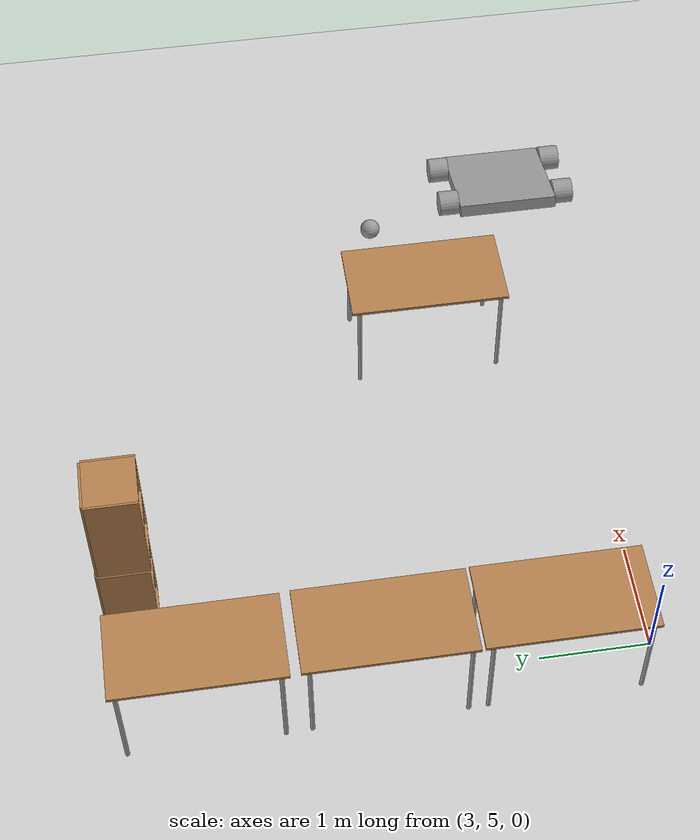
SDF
<sdf version="1.6">
 <world name="default">
  <model name="ground_plane">
   <static>1</static>
   <link name="link">
    <collision name="collision">
     <geometry><plane><normal>0 0 1</normal><size>100 100</size></plane></geometry>
     <surface>
      <contact><collide_bitmask>65535</collide_bitmask></contact>
      <friction><ode><mu>100</mu><mu2>50</mu2></ode></friction>
     </surface>
    </collision>
    <visual name="visual">
     <cast_shadows>0</cast_shadows>
     <geometry><plane><normal>0 0 1</normal><size>100 100</size></plane></geometry>
     <material>
      <script><uri>file://media/materials/scripts/gazebo.material</uri><name>Gazebo/Grey</name></script>
     </material>
    </visual>
   </link>
  </model>
  <model name="table">
   <static>1</static>
   <link name="link">
    <collision name="surface">
     <pose>0 0 1 0 -0 0</pose>
     <geometry><box><size>1.5 0.8 0.03</size></box></geometry>
     <surface><friction><ode><mu>0.6</mu><mu2>0.6</mu2></ode></friction></surface>
    </collision>
    <visual name="visual1">
     <pose>0 0 1 0 -0 0</pose>
     <geometry><box><size>1.5 0.8 0.03</size></box></geometry>
     <material>
      <script><uri>file://media/materials/scripts/gazebo.material</uri><name>Gazebo/Wood</name></script>
     </material>
    </visual>
    <collision name="front_left_leg">
     <pose>0.68 0.38 0.5 0 -0 0</pose>
     <geometry><cylinder><radius>0.02</radius><length>1</length></cylinder></geometry>
    </collision>
    <visual name="front_left_leg">
     <pose>0.68 0.38 0.5 0 -0 0</pose>
     <geometry><cylinder><radius>0.02</radius><length>1</length></cylinder></geometry>
     <material>
      <script><uri>file://media/materials/scripts/gazebo.material</uri><name>Gazebo/Grey</name></script>
     </material>
    </visual>
    <collision name="front_right_leg">
     <pose>0.68 -0.38 0.5 0 -0 0</pose>
     <geometry><cylinder><radius>0.02</radius><length>1</length></cylinder></geometry>
    </collision>
    <visual name="front_right_leg">
     <pose>0.68 -0.38 0.5 0 -0 0</pose>
     <geometry><cylinder><radius>0.02</radius><length>1</length></cylinder></geometry>
     <material>
      <script><uri>file://media/materials/scripts/gazebo.material</uri><name>Gazebo/Grey</name></script>
     </material>
    </visual>
    <collision name="back_right_leg">
     <pose>-0.68 -0.38 0.5 0 -0 0</pose>
     <geometry><cylinder><radius>0.02</radius><length>1</length></cylinder></geometry>
    </collision>
    <visual name="back_right_leg">
     <pose>-0.68 -0.38 0.5 0 -0 0</pose>
     <geometry><cylinder><radius>0.02</radius><length>1</length></cylinder></geometry>
     <material>
      <script><uri>file://media/materials/scripts/gazebo.material</uri><name>Gazebo/Grey</name></script>
     </material>
    </visual>
    <collision name="back_left_leg">
     <pose>-0.68 0.38 0.5 0 -0 0</pose>
     <geometry><cylinder><radius>0.02</radius><length>1</length></cylinder></geometry>
    </collision>
    <visual name="back_left_leg">
     <pose>-0.68 0.38 0.5 0 -0 0</pose>
     <geometry><cylinder><radius>0.02</radius><length>1</length></cylinder></geometry>
     <material>
      <script><uri>file://media/materials/scripts/gazebo.material</uri><name>Gazebo/Grey</name></script>
     </material>
    </visual>
   </link>
   <pose>3.00383 7.38108 0 0 -0 1.57079</pose>
  </model>
  <model name="table_0">
   <static>1</static>
   <link name="link">
    <collision name="surface">
     <pose>0 0 1 0 -0 0</pose>
     <geometry><box><size>1.5 0.8 0.03</size></box></geometry>
     <surface><friction><ode><mu>0.6</mu><mu2>0.6</mu2></ode></friction></surface>
    </collision>
    <visual name="visual1">
     <pose>0 0 1 0 -0 0</pose>
     <geometry><box><size>1.5 0.8 0.03</size></box></geometry>
     <material>
      <script><uri>file://media/materials/scripts/gazebo.material</uri><name>Gazebo/Wood</name></script>
     </material>
    </visual>
    <collision name="front_left_leg">
     <pose>0.68 0.38 0.5 0 -0 0</pose>
     <geometry><cylinder><radius>0.02</radius><length>1</length></cylinder></geometry>
    </collision>
    <visual name="front_left_leg">
     <pose>0.68 0.38 0.5 0 -0 0</pose>
     <geometry><cylinder><radius>0.02</radius><length>1</length></cylinder></geometry>
     <material>
      <script><uri>file://media/materials/scripts/gazebo.material</uri><name>Gazebo/Grey</name></script>
     </material>
    </visual>
    <collision name="front_right_leg">
     <pose>0.68 -0.38 0.5 0 -0 0</pose>
     <geometry><cylinder><radius>0.02</radius><length>1</length></cylinder></geometry>
    </collision>
    <visual name="front_right_leg">
     <pose>0.68 -0.38 0.5 0 -0 0</pose>
     <geometry><cylinder><radius>0.02</radius><length>1</length></cylinder></geometry>
     <material>
      <script><uri>file://media/materials/scripts/gazebo.material</uri><name>Gazebo/Grey</name></script>
     </material>
    </visual>
    <collision name="back_right_leg">
     <pose>-0.68 -0.38 0.5 0 -0 0</pose>
     <geometry><cylinder><radius>0.02</radius><length>1</length></cylinder></geometry>
    </collision>
    <visual name="back_right_leg">
     <pose>-0.68 -0.38 0.5 0 -0 0</pose>
     <geometry><cylinder><radius>0.02</radius><length>1</length></cylinder></geometry>
     <material>
      <script><uri>file://media/materials/scripts/gazebo.material</uri><name>Gazebo/Grey</name></script>
     </material>
    </visual>
    <collision name="back_left_leg">
     <pose>-0.68 0.38 0.5 0 -0 0</pose>
     <geometry><cylinder><radius>0.02</radius><length>1</length></cylinder></geometry>
    </collision>
    <visual name="back_left_leg">
     <pose>-0.68 0.38 0.5 0 -0 0</pose>
     <geometry><cylinder><radius>0.02</radius><length>1</length></cylinder></geometry>
     <material>
      <script><uri>file://media/materials/scripts/gazebo.material</uri><name>Gazebo/Grey</name></script>
     </material>
    </visual>
   </link>
   <pose>2.99399 8.97108 0 0 -0 1.57079</pose>
  </model>
  <model name="table_1">
   <static>1</static>
   <link name="link">
    <collision name="surface">
     <pose>0 0 1 0 -0 0</pose>
     <geometry><box><size>1.5 0.8 0.03</size></box></geometry>
     <surface><friction><ode><mu>0.6</mu><mu2>0.6</mu2></ode></friction></surface>
    </collision>
    <visual name="visual1">
     <pose>0 0 1 0 -0 0</pose>
     <geometry><box><size>1.5 0.8 0.03</size></box></geometry>
     <material>
      <script><uri>file://media/materials/scripts/gazebo.material</uri><name>Gazebo/Wood</name></script>
     </material>
    </visual>
    <collision name="front_left_leg">
     <pose>0.68 0.38 0.5 0 -0 0</pose>
     <geometry><cylinder><radius>0.02</radius><length>1</length></cylinder></geometry>
    </collision>
    <visual name="front_left_leg">
     <pose>0.68 0.38 0.5 0 -0 0</pose>
     <geometry><cylinder><radius>0.02</radius><length>1</length></cylinder></geometry>
     <material>
      <script><uri>file://media/materials/scripts/gazebo.material</uri><name>Gazebo/Grey</name></script>
     </material>
    </visual>
    <collision name="front_right_leg">
     <pose>0.68 -0.38 0.5 0 -0 0</pose>
     <geometry><cylinder><radius>0.02</radius><length>1</length></cylinder></geometry>
    </collision>
    <visual name="front_right_leg">
     <pose>0.68 -0.38 0.5 0 -0 0</pose>
     <geometry><cylinder><radius>0.02</radius><length>1</length></cylinder></geometry>
     <material>
      <script><uri>file://media/materials/scripts/gazebo.material</uri><name>Gazebo/Grey</name></script>
     </material>
    </visual>
    <collision name="back_right_leg">
     <pose>-0.68 -0.38 0.5 0 -0 0</pose>
     <geometry><cylinder><radius>0.02</radius><length>1</length></cylinder></geometry>
    </collision>
    <visual name="back_right_leg">
     <pose>-0.68 -0.38 0.5 0 -0 0</pose>
     <geometry><cylinder><radius>0.02</radius><length>1</length></cylinder></geometry>
     <material>
      <script><uri>file://media/materials/scripts/gazebo.material</uri><name>Gazebo/Grey</name></script>
     </material>
    </visual>
    <collision name="back_left_leg">
     <pose>-0.68 0.38 0.5 0 -0 0</pose>
     <geometry><cylinder><radius>0.02</radius><length>1</length></cylinder></geometry>
    </collision>
    <visual name="back_left_leg">
     <pose>-0.68 0.38 0.5 0 -0 0</pose>
     <geometry><cylinder><radius>0.02</radius><length>1</length></cylinder></geometry>
     <material>
      <script><uri>file://media/materials/scripts/gazebo.material</uri><name>Gazebo/Grey</name></script>
     </material>
    </visual>
   </link>
   <pose>6.72281 6.43599 0 0 -0 1.57079</pose>
  </model>
  <model name="table_2">
   <static>1</static>
   <link name="link">
    <collision name="surface">
     <pose>0 0 1 0 -0 0</pose>
     <geometry><box><size>1.5 0.8 0.03</size></box></geometry>
     <surface><friction><ode><mu>0.6</mu><mu2>0.6</mu2></ode></friction></surface>
    </collision>
    <visual name="visual1">
     <pose>0 0 1 0 -0 0</pose>
     <geometry><box><size>1.5 0.8 0.03</size></box></geometry>
     <material>
      <script><uri>file://media/materials/scripts/gazebo.material</uri><name>Gazebo/Wood</name></script>
     </material>
    </visual>
    <collision name="front_left_leg">
     <pose>0.68 0.38 0.5 0 -0 0</pose>
     <geometry><cylinder><radius>0.02</radius><length>1</length></cylinder></geometry>
    </collision>
    <visual name="front_left_leg">
     <pose>0.68 0.38 0.5 0 -0 0</pose>
     <geometry><cylinder><radius>0.02</radius><length>1</length></cylinder></geometry>
     <material>
      <script><uri>file://media/materials/scripts/gazebo.material</uri><name>Gazebo/Grey</name></script>
     </material>
    </visual>
    <collision name="front_right_leg">
     <pose>0.68 -0.38 0.5 0 -0 0</pose>
     <geometry><cylinder><radius>0.02</radius><length>1</length></cylinder></geometry>
    </collision>
    <visual name="front_right_leg">
     <pose>0.68 -0.38 0.5 0 -0 0</pose>
     <geometry><cylinder><radius>0.02</radius><length>1</length></cylinder></geometry>
     <material>
      <script><uri>file://media/materials/scripts/gazebo.material</uri><name>Gazebo/Grey</name></script>
     </material>
    </visual>
    <collision name="back_right_leg">
     <pose>-0.68 -0.38 0.5 0 -0 0</pose>
     <geometry><cylinder><radius>0.02</radius><length>1</length></cylinder></geometry>
    </collision>
    <visual name="back_right_leg">
     <pose>-0.68 -0.38 0.5 0 -0 0</pose>
     <geometry><cylinder><radius>0.02</radius><length>1</length></cylinder></geometry>
     <material>
      <script><uri>file://media/materials/scripts/gazebo.material</uri><name>Gazebo/Grey</name></script>
     </material>
    </visual>
    <collision name="back_left_leg">
     <pose>-0.68 0.38 0.5 0 -0 0</pose>
     <geometry><cylinder><radius>0.02</radius><length>1</length></cylinder></geometry>
    </collision>
    <visual name="back_left_leg">
     <pose>-0.68 0.38 0.5 0 -0 0</pose>
     <geometry><cylinder><radius>0.02</radius><length>1</length></cylinder></geometry>
     <material>
      <script><uri>file://media/materials/scripts/gazebo.material</uri><name>Gazebo/Grey</name></script>
     </material>
    </visual>
   </link>
   <pose>3.01117 5.84781 0 0 -0 1.57079</pose>
  </model>
  <model name="cabinet">
   <static>1</static>
   <link name="cabinet_bottom_plate">
    <inertial>
     <pose>0 0 -1 0 -0 0</pose>
     <inertia><ixx>2.05</ixx><ixy>0</ixy><ixz>0</ixz><iyy>2.05</iyy><iyz>0</iyz><izz>2.05</izz></inertia>
     <mass>25</mass>
    </inertial>
    <collision name="cabinet_bottom_plate_geom">
     <pose>0 0 0.01 0 -0 0</pose>
     <geometry><box><size>0.45 0.45 0.02</size></box></geometry>
    </collision>
    <visual name="cabinet_bottom_plate_geom_visual">
     <pose>0 0 0.01 0 -0 0</pose>
     <geometry><box><size>0.45 0.45 0.02</size></box></geometry>
     <material>
      <script><uri>file://media/materials/scripts/gazebo.material</uri><name>Gazebo/Wood</name></script>
     </material>
    </visual>
    <collision name="cabinet_bottom_plate_geom_cabinet_back_plate">
     <pose>0.235 0 0.51 0 -0 0</pose>
     <geometry><box><size>0.02 0.45 1.02</size></box></geometry>
    </collision>
    <visual name="cabinet_bottom_plate_geom_cabinet_back_plate_visual">
     <pose>0.235 0 0.51 0 -0 0</pose>
     <geometry><box><size>0.02 0.45 1.02</size></box></geometry>
     <material>
      <script><uri>file://media/materials/scripts/gazebo.material</uri><name>Gazebo/Wood</name></script>
     </material>
    </visual>
    <collision name="cabinet_bottom_plate_geom_cabinet_left_plate">
     <pose>0 0.235 0.51 0 -0 0</pose>
     <geometry><box><size>0.45 0.02 1.02</size></box></geometry>
    </collision>
    <visual name="cabinet_bottom_plate_geom_cabinet_left_plate_visual">
     <pose>0 0.235 0.51 0 -0 0</pose>
     <geometry><box><size>0.45 0.02 1.02</size></box></geometry>
     <material>
      <script><uri>file://media/materials/scripts/gazebo.material</uri><name>Gazebo/Wood</name></script>
     </material>
    </visual>
    <collision name="cabinet_bottom_plate_geom_cabinet_middle_plate">
     <pose>0 0 0.51 0 -0 0</pose>
     <geometry><box><size>0.45 0.45 0.02</size></box></geometry>
    </collision>
    <visual name="cabinet_bottom_plate_geom_cabinet_middle_plate_visual">
     <pose>0 0 0.51 0 -0 0</pose>
     <geometry><box><size>0.45 0.45 0.02</size></box></geometry>
     <material>
      <script><uri>file://media/materials/scripts/gazebo.material</uri><name>Gazebo/Wood</name></script>
     </material>
    </visual>
    <collision name="cabinet_bottom_plate_geom_cabinet_right_plate">
     <pose>0 -0.235 0.51 0 -0 0</pose>
     <geometry><box><size>0.45 0.02 1.02</size></box></geometry>
    </collision>
    <visual name="cabinet_bottom_plate_geom_cabinet_right_plate_visual">
     <pose>0 -0.235 0.51 0 -0 0</pose>
     <geometry><box><size>0.45 0.02 1.02</size></box></geometry>
     <material>
      <script><uri>file://media/materials/scripts/gazebo.material</uri><name>Gazebo/Wood</name></script>
     </material>
    </visual>
    <collision name="cabinet_bottom_plate_geom_cabinet_top_plate">
     <pose>0 0 1.01 0 -0 0</pose>
     <geometry><box><size>0.45 0.45 0.02</size></box></geometry>
    </collision>
    <visual name="cabinet_bottom_plate_geom_cabinet_top_plate_visual">
     <pose>0 0 1.01 0 -0 0</pose>
     <geometry><box><size>0.45 0.45 0.02</size></box></geometry>
     <material>
      <script><uri>file://media/materials/scripts/gazebo.material</uri><name>Gazebo/Wood</name></script>
     </material>
    </visual>
   </link>
   <pose>3.99365 9.4995 0 0 -0 1.57079</pose>
  </model>
  <model name="cabinet_0">
   <static>1</static>
   <link name="cabinet_bottom_plate">
    <inertial>
     <pose>0 0 -1 0 -0 0</pose>
     <inertia><ixx>2.05</ixx><ixy>0</ixy><ixz>0</ixz><iyy>2.05</iyy><iyz>0</iyz><izz>2.05</izz></inertia>
     <mass>25</mass>
    </inertial>
    <collision name="cabinet_bottom_plate_geom">
     <pose>0 0 0.01 0 -0 0</pose>
     <geometry><box><size>0.45 0.45 0.02</size></box></geometry>
    </collision>
    <visual name="cabinet_bottom_plate_geom_visual">
     <pose>0 0 0.01 0 -0 0</pose>
     <geometry><box><size>0.45 0.45 0.02</size></box></geometry>
     <material>
      <script><uri>file://media/materials/scripts/gazebo.material</uri><name>Gazebo/Wood</name></script>
     </material>
    </visual>
    <collision name="cabinet_bottom_plate_geom_cabinet_back_plate">
     <pose>0.235 0 0.51 0 -0 0</pose>
     <geometry><box><size>0.02 0.45 1.02</size></box></geometry>
    </collision>
    <visual name="cabinet_bottom_plate_geom_cabinet_back_plate_visual">
     <pose>0.235 0 0.51 0 -0 0</pose>
     <geometry><box><size>0.02 0.45 1.02</size></box></geometry>
     <material>
      <script><uri>file://media/materials/scripts/gazebo.material</uri><name>Gazebo/Wood</name></script>
     </material>
    </visual>
    <collision name="cabinet_bottom_plate_geom_cabinet_left_plate">
     <pose>0 0.235 0.51 0 -0 0</pose>
     <geometry><box><size>0.45 0.02 1.02</size></box></geometry>
    </collision>
    <visual name="cabinet_bottom_plate_geom_cabinet_left_plate_visual">
     <pose>0 0.235 0.51 0 -0 0</pose>
     <geometry><box><size>0.45 0.02 1.02</size></box></geometry>
     <material>
      <script><uri>file://media/materials/scripts/gazebo.material</uri><name>Gazebo/Wood</name></script>
     </material>
    </visual>
    <collision name="cabinet_bottom_plate_geom_cabinet_middle_plate">
     <pose>0 0 0.51 0 -0 0</pose>
     <geometry><box><size>0.45 0.45 0.02</size></box></geometry>
    </collision>
    <visual name="cabinet_bottom_plate_geom_cabinet_middle_plate_visual">
     <pose>0 0 0.51 0 -0 0</pose>
     <geometry><box><size>0.45 0.45 0.02</size></box></geometry>
     <material>
      <script><uri>file://media/materials/scripts/gazebo.material</uri><name>Gazebo/Wood</name></script>
     </material>
    </visual>
    <collision name="cabinet_bottom_plate_geom_cabinet_right_plate">
     <pose>0 -0.235 0.51 0 -0 0</pose>
     <geometry><box><size>0.45 0.02 1.02</size></box></geometry>
    </collision>
    <visual name="cabinet_bottom_plate_geom_cabinet_right_plate_visual">
     <pose>0 -0.235 0.51 0 -0 0</pose>
     <geometry><box><size>0.45 0.02 1.02</size></box></geometry>
     <material>
      <script><uri>file://media/materials/scripts/gazebo.material</uri><name>Gazebo/Wood</name></script>
     </material>
    </visual>
    <collision name="cabinet_bottom_plate_geom_cabinet_top_plate">
     <pose>0 0 1.01 0 -0 0</pose>
     <geometry><box><size>0.45 0.45 0.02</size></box></geometry>
    </collision>
    <visual name="cabinet_bottom_plate_geom_cabinet_top_plate_visual">
     <pose>0 0 1.01 0 -0 0</pose>
     <geometry><box><size>0.45 0.45 0.02</size></box></geometry>
     <material>
      <script><uri>file://media/materials/scripts/gazebo.material</uri><name>Gazebo/Wood</name></script>
     </material>
    </visual>
   </link>
   <pose>3.99574 9.4896 1.03874 0 -0 1.57079</pose>
  </model>
  <model name="robot_base_0">
   <link name="link_3">
    <inertial>
     <mass>1</mass>
     <inertia><ixx>0.145833</ixx><ixy>0</ixy><ixz>0</ixz><iyy>0.145833</iyy><iyz>0</iyz><izz>0.125</izz></inertia>
    </inertial>
    <pose>0.346702 -0.600418 0 0 -0 0</pose>
    <visual name="visual">
     <pose>0 0 0 1.5708 -0 0</pose>
     <geometry><cylinder><radius>0.125</radius><length>0.2</length></cylinder></geometry>
     <material>
      <lighting>1</lighting>
      <script><uri>file://media/materials/scripts/gazebo.material</uri><name>Gazebo/Grey</name></script>
      <shader type="pixel"><normal_map>__default__</normal_map></shader>
      <ambient>0.3 0.3 0.3 1</ambient>
      <diffuse>0.7 0.7 0.7 1</diffuse>
      <specular>0.01 0.01 0.01 1</specular>
      <emissive>0 0 0 1</emissive>
     </material>
    </visual>
    <collision name="collision">
     <pose>0 0 0 1.5708 -0 0</pose>
     <geometry><cylinder><radius>0.125</radius><length>0.2</length></cylinder></geometry>
     <surface>
      <friction>
       <ode><mu>1</mu><mu2>1</mu2><fdir1>0 0 0</fdir1><slip1>0</slip1><slip2>0</slip2></ode>
       <torsional>
        <coefficient>1</coefficient>
        <patch_radius>0</patch_radius>
        <surface_radius>0</surface_radius>
        <use_patch_radius>1</use_patch_radius>
        <ode><slip>0</slip></ode>
       </torsional>
      </friction>
      <bounce><restitution_coefficient>0</restitution_coefficient><threshold>1e+06</threshold></bounce>
      <contact>
       <collide_without_contact>0</collide_without_contact>
       <collide_without_contact_bitmask>1</collide_without_contact_bitmask>
       <collide_bitmask>1</collide_bitmask>
       <ode>
        <soft_cfm>0</soft_cfm>
        <soft_erp>0.2</soft_erp>
        <kp>1e+13</kp>
        <kd>1</kd>
        <max_vel>0.01</max_vel>
        <min_depth>0</min_depth>
       </ode>
       <bullet>
        <split_impulse>1</split_impulse>
        <split_impulse_penetration_threshold>-0.01</split_impulse_penetration_threshold>
        <soft_cfm>0</soft_cfm>
        <soft_erp>0.2</soft_erp>
        <kp>1e+13</kp>
        <kd>1</kd>
       </bullet>
      </contact>
     </surface>
    </collision>
   </link>
   <link name="link_3_clone">
    <inertial>
     <mass>1</mass>
     <inertia><ixx>0.145833</ixx><ixy>0</ixy><ixz>0</ixz><iyy>0.145833</iyy><iyz>0</iyz><izz>0.125</izz></inertia>
    </inertial>
    <pose>-0.327306 -0.599569 0 0 -0 0</pose>
    <visual name="visual">
     <pose>0 0 0 1.5708 -0 0</pose>
     <geometry><cylinder><radius>0.125</radius><length>0.2</length></cylinder></geometry>
     <material>
      <lighting>1</lighting>
      <script><uri>file://media/materials/scripts/gazebo.material</uri><name>Gazebo/Grey</name></script>
      <shader type="pixel"><normal_map>__default__</normal_map></shader>
      <ambient>0.3 0.3 0.3 1</ambient>
      <diffuse>0.7 0.7 0.7 1</diffuse>
      <specular>0.01 0.01 0.01 1</specular>
      <emissive>0 0 0 1</emissive>
     </material>
    </visual>
    <collision name="collision">
     <pose>0 0 0 1.5708 -0 0</pose>
     <geometry><cylinder><radius>0.125</radius><length>0.2</length></cylinder></geometry>
     <surface>
      <friction>
       <ode><mu>1</mu><mu2>1</mu2><fdir1>0 0 0</fdir1><slip1>0</slip1><slip2>0</slip2></ode>
       <torsional>
        <coefficient>1</coefficient>
        <patch_radius>0</patch_radius>
        <surface_radius>0</surface_radius>
        <use_patch_radius>1</use_patch_radius>
        <ode><slip>0</slip></ode>
       </torsional>
      </friction>
      <bounce><restitution_coefficient>0</restitution_coefficient><threshold>1e+06</threshold></bounce>
      <contact>
       <collide_without_contact>0</collide_without_contact>
       <collide_without_contact_bitmask>1</collide_without_contact_bitmask>
       <collide_bitmask>1</collide_bitmask>
       <ode>
        <soft_cfm>0</soft_cfm>
        <soft_erp>0.2</soft_erp>
        <kp>1e+13</kp>
        <kd>1</kd>
        <max_vel>0.01</max_vel>
        <min_depth>0</min_depth>
       </ode>
       <bullet>
        <split_impulse>1</split_impulse>
        <split_impulse_penetration_threshold>-0.01</split_impulse_penetration_threshold>
        <soft_cfm>0</soft_cfm>
        <soft_erp>0.2</soft_erp>
        <kp>1e+13</kp>
        <kd>1</kd>
       </bullet>
      </contact>
     </surface>
    </collision>
   </link>
   <link name="link_3_clone_0">
    <inertial>
     <mass>1</mass>
     <inertia><ixx>0.145833</ixx><ixy>0</ixy><ixz>0</ixz><iyy>0.145833</iyy><iyz>0</iyz><izz>0.125</izz></inertia>
    </inertial>
    <pose>-0.327588 0.600462 0 0 -0 0</pose>
    <visual name="visual">
     <pose>0 0 0 1.5708 -0 0</pose>
     <geometry><cylinder><radius>0.125</radius><length>0.2</length></cylinder></geometry>
     <material>
      <lighting>1</lighting>
      <script><uri>file://media/materials/scripts/gazebo.material</uri><name>Gazebo/Grey</name></script>
      <shader type="pixel"><normal_map>__default__</normal_map></shader>
      <ambient>0.3 0.3 0.3 1</ambient>
      <diffuse>0.7 0.7 0.7 1</diffuse>
      <specular>0.01 0.01 0.01 1</specular>
      <emissive>0 0 0 1</emissive>
     </material>
    </visual>
    <collision name="collision">
     <pose>0 0 0 1.5708 -0 0</pose>
     <geometry><cylinder><radius>0.125</radius><length>0.2</length></cylinder></geometry>
     <surface>
      <friction>
       <ode><mu>1</mu><mu2>1</mu2><fdir1>0 0 0</fdir1><slip1>0</slip1><slip2>0</slip2></ode>
       <torsional>
        <coefficient>1</coefficient>
        <patch_radius>0</patch_radius>
        <surface_radius>0</surface_radius>
        <use_patch_radius>1</use_patch_radius>
        <ode><slip>0</slip></ode>
       </torsional>
      </friction>
      <bounce><restitution_coefficient>0</restitution_coefficient><threshold>1e+06</threshold></bounce>
      <contact>
       <collide_without_contact>0</collide_without_contact>
       <collide_without_contact_bitmask>1</collide_without_contact_bitmask>
       <collide_bitmask>1</collide_bitmask>
       <ode>
        <soft_cfm>0</soft_cfm>
        <soft_erp>0.2</soft_erp>
        <kp>1e+13</kp>
        <kd>1</kd>
        <max_vel>0.01</max_vel>
        <min_depth>0</min_depth>
       </ode>
       <bullet>
        <split_impulse>1</split_impulse>
        <split_impulse_penetration_threshold>-0.01</split_impulse_penetration_threshold>
        <soft_cfm>0</soft_cfm>
        <soft_erp>0.2</soft_erp>
        <kp>1e+13</kp>
        <kd>1</kd>
       </bullet>
      </contact>
     </surface>
    </collision>
   </link>
   <link name="link_3_clone_1">
    <inertial>
     <mass>1</mass>
     <inertia><ixx>0.145833</ixx><ixy>0</ixy><ixz>0</ixz><iyy>0.145833</iyy><iyz>0</iyz><izz>0.125</izz></inertia>
    </inertial>
    <pose>0.3334 0.598662 0 0 -0 0</pose>
    <visual name="visual">
     <pose>0 0 0 1.5708 -0 0</pose>
     <geometry><cylinder><radius>0.125</radius><length>0.2</length></cylinder></geometry>
     <material>
      <lighting>1</lighting>
      <script><uri>file://media/materials/scripts/gazebo.material</uri><name>Gazebo/Grey</name></script>
      <shader type="pixel"><normal_map>__default__</normal_map></shader>
      <ambient>0.3 0.3 0.3 1</ambient>
      <diffuse>0.7 0.7 0.7 1</diffuse>
      <specular>0.01 0.01 0.01 1</specular>
      <emissive>0 0 0 1</emissive>
     </material>
    </visual>
    <collision name="collision">
     <pose>0 0 0 1.5708 -0 0</pose>
     <geometry><cylinder><radius>0.125</radius><length>0.2</length></cylinder></geometry>
     <surface>
      <friction>
       <ode><mu>1</mu><mu2>1</mu2><fdir1>0 0 0</fdir1><slip1>0</slip1><slip2>0</slip2></ode>
       <torsional>
        <coefficient>1</coefficient>
        <patch_radius>0</patch_radius>
        <surface_radius>0</surface_radius>
        <use_patch_radius>1</use_patch_radius>
        <ode><slip>0</slip></ode>
       </torsional>
      </friction>
      <bounce><restitution_coefficient>0</restitution_coefficient><threshold>1e+06</threshold></bounce>
      <contact>
       <collide_without_contact>0</collide_without_contact>
       <collide_without_contact_bitmask>1</collide_without_contact_bitmask>
       <collide_bitmask>1</collide_bitmask>
       <ode>
        <soft_cfm>0</soft_cfm>
        <soft_erp>0.2</soft_erp>
        <kp>1e+13</kp>
        <kd>1</kd>
        <max_vel>0.01</max_vel>
        <min_depth>0</min_depth>
       </ode>
       <bullet>
        <split_impulse>1</split_impulse>
        <split_impulse_penetration_threshold>-0.01</split_impulse_penetration_threshold>
        <soft_cfm>0</soft_cfm>
        <soft_erp>0.2</soft_erp>
        <kp>1e+13</kp>
        <kd>1</kd>
       </bullet>
      </contact>
     </surface>
    </collision>
   </link>
   <link name="link_4">
    <inertial>
     <mass>1</mass>
     <inertia>
      <ixx>0.166667</ixx>
      <ixy>0</ixy>
      <ixz>0</ixz>
      <iyy>0.166667</iyy>
      <iyz>0</iyz>
      <izz>0.166667</izz>
     </inertia>
    </inertial>
    <pose>-0.025208 0.000862 0 0 -0 0</pose>
    <visual name="visual">
     <geometry><box><size>1 1 0.125</size></box></geometry>
     <material>
      <lighting>1</lighting>
      <script><uri>file://media/materials/scripts/gazebo.material</uri><name>Gazebo/Grey</name></script>
      <shader type="pixel"><normal_map>__default__</normal_map></shader>
      <ambient>0.3 0.3 0.3 1</ambient>
      <diffuse>0.7 0.7 0.7 1</diffuse>
      <specular>0.01 0.01 0.01 1</specular>
      <emissive>0 0 0 1</emissive>
     </material>
    </visual>
    <collision name="collision">
     <geometry><box><size>1 1 0.125</size></box></geometry>
     <surface>
      <friction>
       <ode><mu>1</mu><mu2>1</mu2><fdir1>0 0 0</fdir1><slip1>0</slip1><slip2>0</slip2></ode>
       <torsional>
        <coefficient>1</coefficient>
        <patch_radius>0</patch_radius>
        <surface_radius>0</surface_radius>
        <use_patch_radius>1</use_patch_radius>
        <ode><slip>0</slip></ode>
       </torsional>
      </friction>
      <bounce><restitution_coefficient>0</restitution_coefficient><threshold>1e+06</threshold></bounce>
      <contact>
       <collide_without_contact>0</collide_without_contact>
       <collide_without_contact_bitmask>1</collide_without_contact_bitmask>
       <collide_bitmask>1</collide_bitmask>
       <ode>
        <soft_cfm>0</soft_cfm>
        <soft_erp>0.2</soft_erp>
        <kp>1e+13</kp>
        <kd>1</kd>
        <max_vel>0.01</max_vel>
        <min_depth>0</min_depth>
       </ode>
       <bullet>
        <split_impulse>1</split_impulse>
        <split_impulse_penetration_threshold>-0.01</split_impulse_penetration_threshold>
        <soft_cfm>0</soft_cfm>
        <soft_erp>0.2</soft_erp>
        <kp>1e+13</kp>
        <kd>1</kd>
       </bullet>
      </contact>
     </surface>
    </collision>
   </link>
   <joint name="link_4_JOINT_0" type="revolute">
    <parent>link_4</parent>
    <child>link_3</child>
    <axis>
     <xyz>0 1 0</xyz>
     <use_parent_model_frame>0</use_parent_model_frame>
     <limit>
      <lower>-1.79769e+308</lower>
      <upper>1.79769e+308</upper>
      <effort>-1</effort>
      <velocity>-1</velocity>
     </limit>
     <dynamics>
      <spring_reference>0</spring_reference>
      <spring_stiffness>0</spring_stiffness>
      <damping>0</damping>
     </dynamics>
    </axis>
    <physics>
     <ode><limit><cfm>0</cfm><erp>0.2</erp></limit><suspension><cfm>0</cfm><erp>0.2</erp></suspension></ode>
    </physics>
   </joint>
   <joint name="link_4_JOINT_1" type="revolute">
    <parent>link_4</parent>
    <child>link_3_clone</child>
    <axis>
     <xyz>0 1 0</xyz>
     <use_parent_model_frame>0</use_parent_model_frame>
     <limit>
      <lower>-1.79769e+308</lower>
      <upper>1.79769e+308</upper>
      <effort>-1</effort>
      <velocity>-1</velocity>
     </limit>
     <dynamics>
      <spring_reference>0</spring_reference>
      <spring_stiffness>0</spring_stiffness>
      <damping>0</damping>
     </dynamics>
    </axis>
    <physics>
     <ode><limit><cfm>0</cfm><erp>0.2</erp></limit><suspension><cfm>0</cfm><erp>0.2</erp></suspension></ode>
    </physics>
   </joint>
   <joint name="link_4_JOINT_3" type="revolute">
    <parent>link_4</parent>
    <child>link_3_clone_1</child>
    <axis>
     <xyz>0 1 0</xyz>
     <use_parent_model_frame>0</use_parent_model_frame>
     <limit>
      <lower>-1.79769e+308</lower>
      <upper>1.79769e+308</upper>
      <effort>-1</effort>
      <velocity>-1</velocity>
     </limit>
     <dynamics>
      <spring_reference>0</spring_reference>
      <spring_stiffness>0</spring_stiffness>
      <damping>0</damping>
     </dynamics>
    </axis>
    <physics>
     <ode><limit><cfm>0</cfm><erp>0.2</erp></limit><suspension><cfm>0</cfm><erp>0.2</erp></suspension></ode>
    </physics>
   </joint>
   <joint name="link_4_JOINT_4" type="revolute">
    <parent>link_4</parent>
    <child>link_3_clone_0</child>
    <axis>
     <xyz>0 1 0</xyz>
     <use_parent_model_frame>0</use_parent_model_frame>
     <limit>
      <lower>-1.79769e+308</lower>
      <upper>1.79769e+308</upper>
      <effort>-1</effort>
      <velocity>-1</velocity>
     </limit>
     <dynamics>
      <spring_reference>0</spring_reference>
      <spring_stiffness>0</spring_stiffness>
      <damping>0</damping>
     </dynamics>
    </axis>
    <physics>
     <ode><limit><cfm>0</cfm><erp>0.2</erp></limit><suspension><cfm>0</cfm><erp>0.2</erp></suspension></ode>
    </physics>
   </joint>
   <static>0</static>
   <pose>8.60044 5.31045 0.209831 -1e-06 0.247191 -5.3e-05</pose>
  </model>
  <model name="my_ball">
   <link name="link_0">
    <inertial>
     <mass>1</mass>
     <inertia><ixx>0.1</ixx><ixy>0</ixy><ixz>0</ixz><iyy>0.1</iyy><iyz>0</iyz><izz>0.1</izz></inertia>
    </inertial>
    <visual name="visual">
     <geometry><sphere><radius>0.1</radius></sphere></geometry>
     <material>
      <lighting>1</lighting>
      <script><uri>file://media/materials/scripts/gazebo.material</uri><name>Gazebo/Grey</name></script>
      <shader type="pixel"><normal_map>__default__</normal_map></shader>
      <ambient>1 1 1 1</ambient>
      <diffuse>1 1 1 1</diffuse>
      <specular>1 1 1 1</specular>
      <emissive>1 1 1 1</emissive>
     </material>
    </visual>
    <collision name="collision">
     <geometry><sphere><radius>0.1</radius></sphere></geometry>
     <surface>
      <friction>
       <ode><mu>1</mu><mu2>1</mu2><fdir1>0 0 0</fdir1><slip1>0</slip1><slip2>0</slip2></ode>
       <torsional>
        <coefficient>1</coefficient>
        <patch_radius>0</patch_radius>
        <surface_radius>0</surface_radius>
        <use_patch_radius>1</use_patch_radius>
        <ode><slip>0</slip></ode>
       </torsional>
      </friction>
      <bounce><restitution_coefficient>0</restitution_coefficient><threshold>1e+06</threshold></bounce>
      <contact>
       <collide_without_contact>0</collide_without_contact>
       <collide_without_contact_bitmask>1</collide_without_contact_bitmask>
       <collide_bitmask>1</collide_bitmask>
       <ode>
        <soft_cfm>0</soft_cfm>
        <soft_erp>0.2</soft_erp>
        <kp>1e+13</kp>
        <kd>1</kd>
        <max_vel>0.01</max_vel>
        <min_depth>0</min_depth>
       </ode>
       <bullet>
        <split_impulse>1</split_impulse>
        <split_impulse_penetration_threshold>-0.01</split_impulse_penetration_threshold>
        <soft_cfm>0</soft_cfm>
        <soft_erp>0.2</soft_erp>
        <kp>1e+13</kp>
        <kd>1</kd>
       </bullet>
      </contact>
     </surface>
    </collision>
   </link>
   <static>0</static>
   <pose>8.2102 6.74526 0.1 0 -0 0</pose>
  </model>
 </world>
</sdf>
